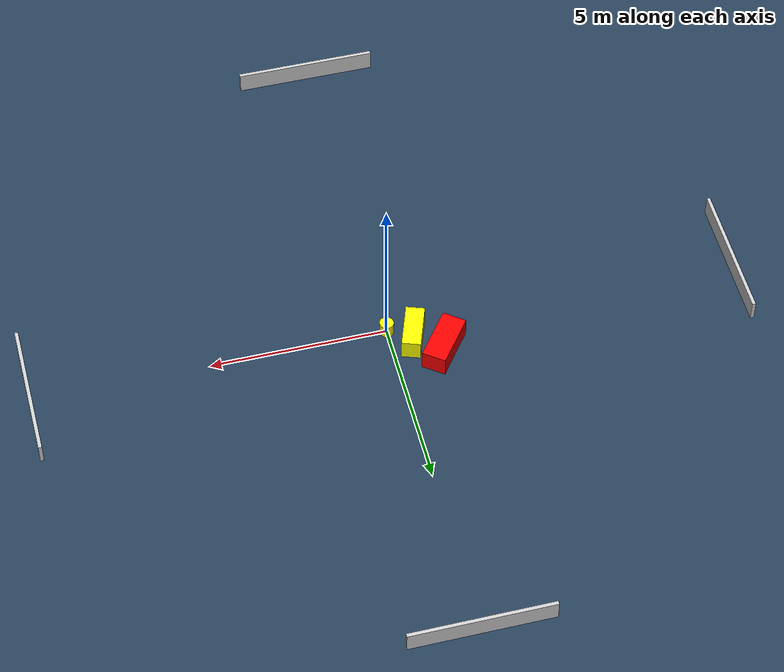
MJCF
<?xml version="1.0" ?>
<mujoco model="generated_environment">
  <option timestep="0.01" integrator="RK4" cone="elliptic"/>
  <default>
    <geom density="1"/>
  </default>
  <asset>
    <texture builtin="gradient" height="3072" name="skybox" rgb1="0.3 0.5 0.7" rgb2="0 0 0" type="skybox" width="512"/>
    <texture builtin="checker" height="300" name="groundplane" rgb1="0.2 0.3 0.4" rgb2="0.1 0.2 0.3" type="2d" width="300"/>
    <material name="groundplane" reflectance="0.2" texrepeat="5 5" texture="groundplane"/>
  </asset>
  <worldbody>
    <light dir="0 0 -1" directional="true" pos="0 0 1.5"/>
    <geom condim="3" friction="0.5 0.005 0.001" material="groundplane" name="floor" pos="0 0 0" size="0 0 0.05" type="plane"/>
    <body name="walls">
      <geom name="wall_1" condim="4" pos="-10.0 0.0 0.3" rgba="0.800000011920929 0.800000011920929 0.800000011920929 1.0" size="0.05 2.0 0.3" type="box"/>
      <geom name="wall_2" condim="4" pos="10.0 0.0 0.3" rgba="0.800000011920929 0.800000011920929 0.800000011920929 1.0" size="0.05 2.0 0.3" type="box"/>
      <geom name="wall_3" condim="4" pos="0.0 -10.0 0.3" rgba="0.800000011920929 0.800000011920929 0.800000011920929 1.0" size="2.0 0.05 0.3" type="box"/>
      <geom name="wall_4" condim="4" pos="0.0 10.0 0.3" rgba="0.800000011920929 0.800000011920929 0.800000011920929 1.0" size="2.0 0.05 0.3" type="box"/>
    </body>
    <body name="robot">
      <joint name="joint_x" type="slide" pos="0 0 0" axis="1 0 0"/>
      <joint name="joint_y" type="slide" pos="0 0 0" axis="0 1 0"/>
      <geom name="robot" type="cylinder" pos="0.0 0.0 0.2" size="0.2 0.2 0.0" mass="5.0" friction="1.0 0.005 0.0001" condim="4" rgba="1.0 1.0 0.0 1.0"/>
    </body>
    <body name="obstacle_1_movable">
      <geom name="obstacle_1_movable" condim="4" pos="-0.6489910903042975 0.4256422986156667 0.3" euler="0 0 250.32650966278817" friction="0.0 0.005 0.001" rgba="1.0 1.0 0.0 1.0" size="0.6416758696827692 0.2663181801885862 0.3" type="box" mass="0.1"/>
      <joint type="free"/>
    </body>
    <body name="obstacle_2_static">
      <geom name="obstacle_2_static" condim="4" pos="-1.3750830938543313 1.0099715878177002 0.3" euler="0 0 233.21136011444935" friction="0.0 0.005 0.001" rgba="1.0 0.0 0.0 1.0" size="0.7642358440402934 0.34215520838587443 0.3" type="box"/>
    </body>
  </worldbody>
  <actuator>
    <motor name="actuator_x" joint="joint_x" gear="1" ctrlrange="-1 1"/>
    <motor name="actuator_y" joint="joint_y" gear="1" ctrlrange="-1 1"/>
  </actuator>
</mujoco>
